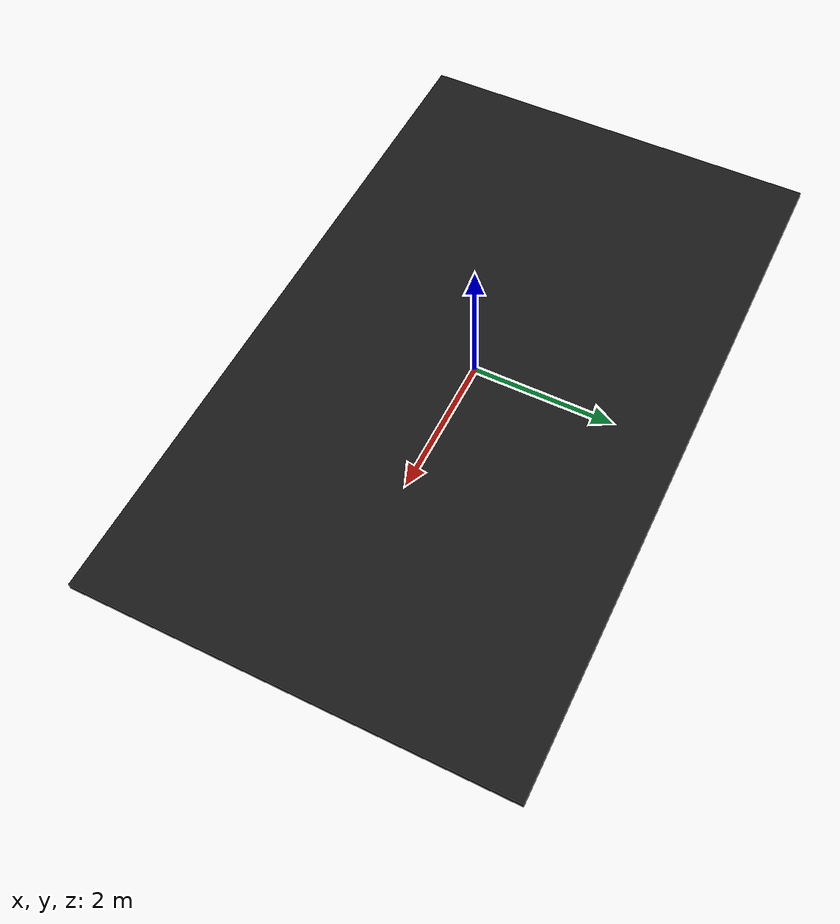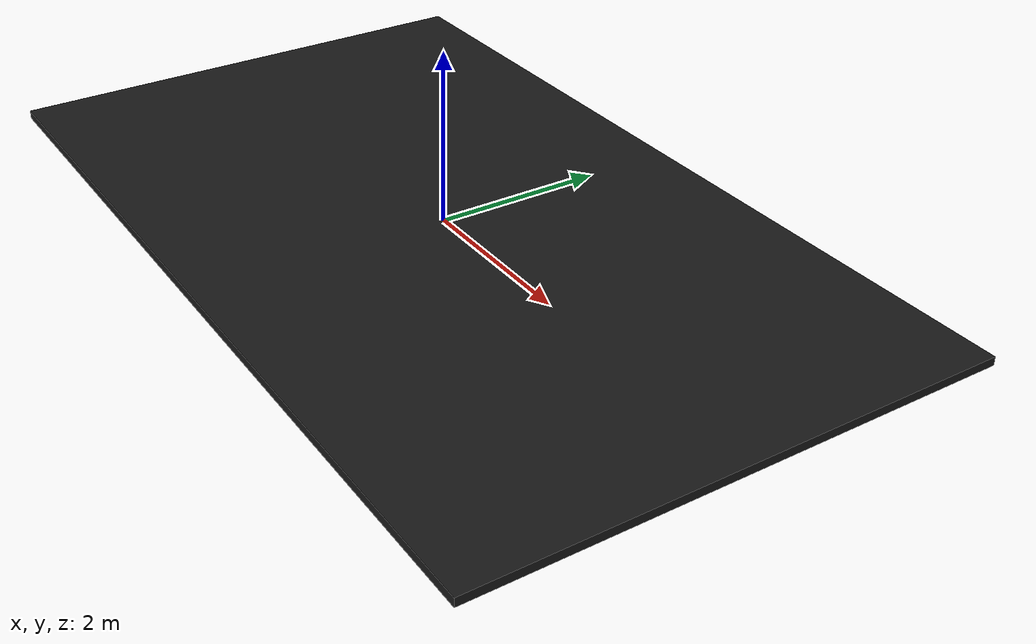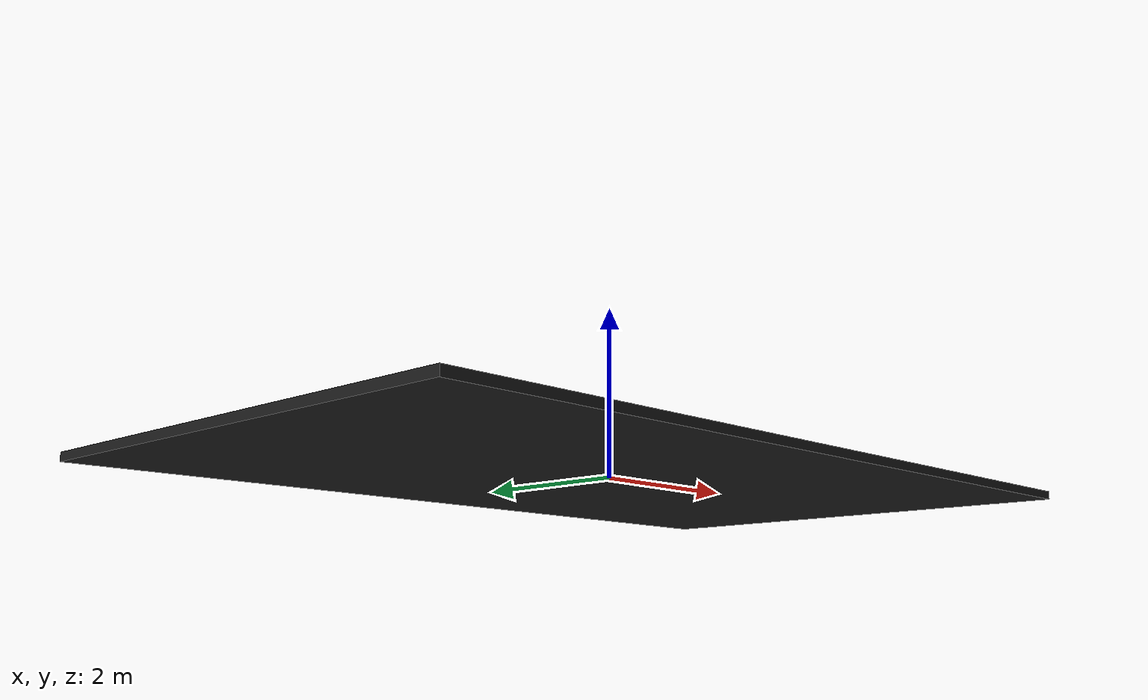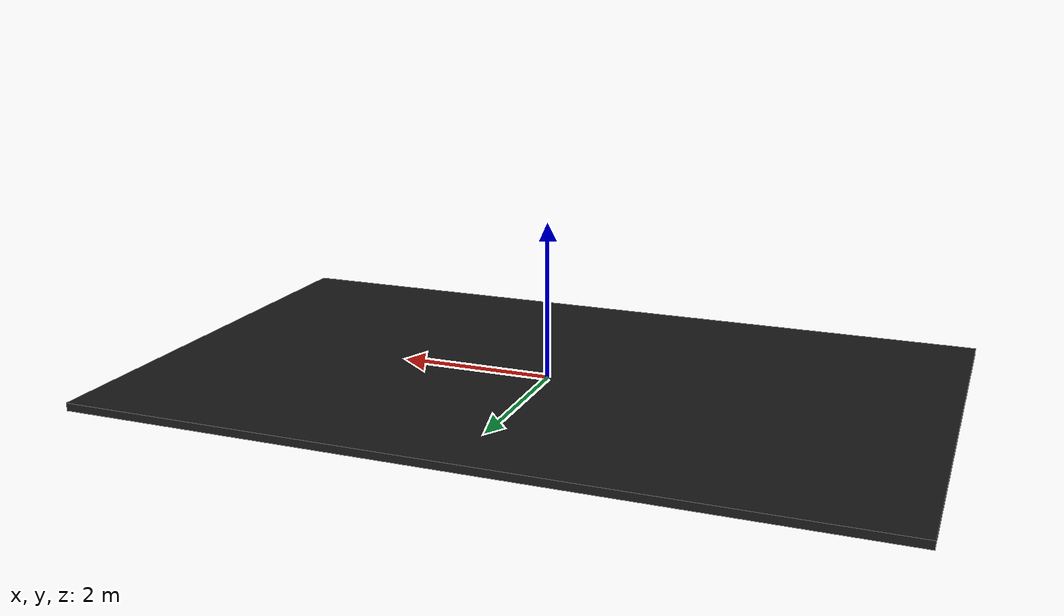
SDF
<?xml version='1.0' ?>
<sdf version='1.6'>
  <model name='road'>
    <static>true</static>  <!-- Keeps the road fixed -->
    <link name='road_link'>
      <visual name='road_visual'>
        <geometry>
          <box>
            <size>10 6 0.1</size>  <!-- Length, width, height -->
          </box>
        </geometry>
        <material>
          <ambient>0.2 0.2 0.2 1</ambient>
          <diffuse>0.1 0.1 0.1 1</diffuse>
          <specular>0.5 0.5 0.5 1</specular>
        </material>
      </visual>
      <collision name='road_collision'>
        <geometry>
          <box>
            <size>10 6 0.1</size>
          </box>
        </geometry>
        <surface>
          <friction>
            <ode/>
          </friction>
        </surface>
      </collision>
    </link>
  </model>
</sdf>
